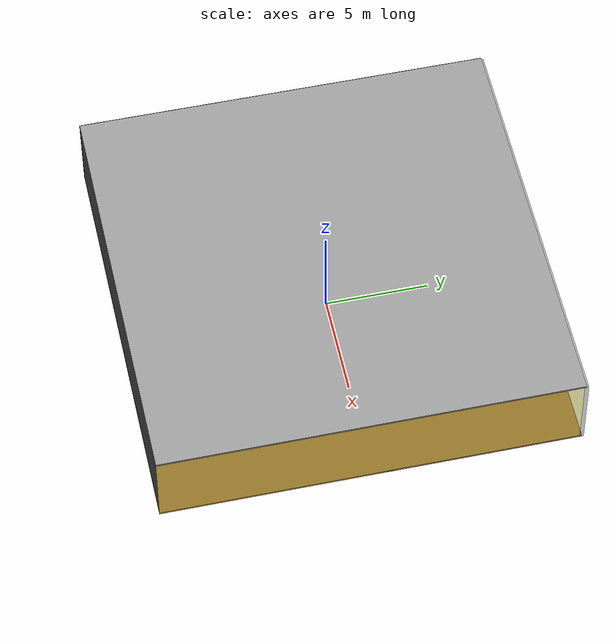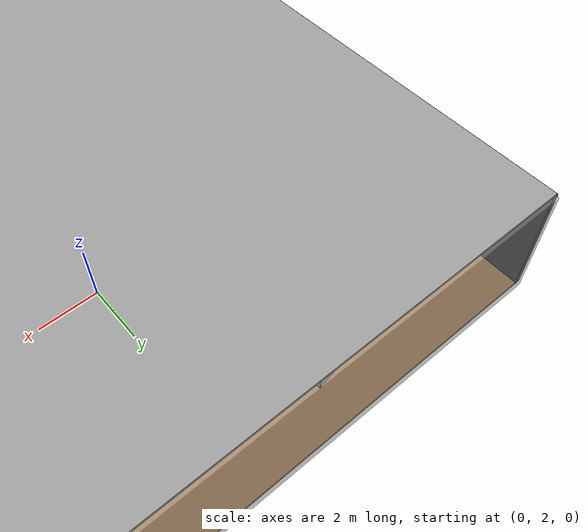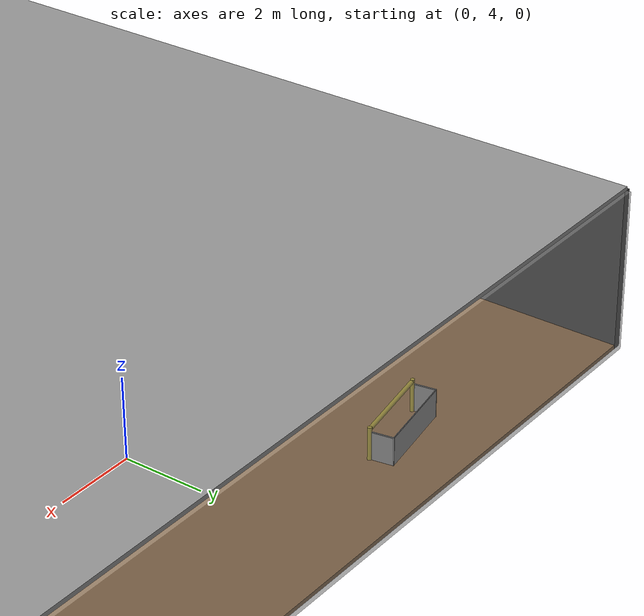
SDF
<sdf version="1.4">
 <world name="default">
  <physics type="ode">
   <max_step_size>0.001</max_step_size>
   <real_time_factor>1</real_time_factor>
   <real_time_update_rate>1000</real_time_update_rate>
   <gravity>0 0 -9.8</gravity>
  </physics>
  <scene><ambient>0.4 0.4 0.4 1</ambient><background>0.7 0.7 0.7 1</background><shadows>1</shadows></scene>
  <model name="Surrounding">
   <static>1</static>
   <link name="Ceiling">
    <collision name="Ceiling_Collision"><geometry><box><size>20 20 0.1</size></box></geometry></collision>
    <visual name="Ceiling_Visual">
     <geometry><box><size>20 20 0.1</size></box></geometry>
     <material>
      <script><uri>file://media/materials/scripts/gazebo.material</uri><name>Gazebo/Grey</name></script>
     </material>
    </visual>
    <pose>0 0 4.05 0 0 0</pose>
   </link>
   <link name="Wall_South">
    <collision name="Wall_South_Collision">
     <geometry><box><size>20 0 4</size></box></geometry>
     <pose>0 0 2 0 -0 0</pose>
    </collision>
    <visual name="Wall_South_Visual">
     <pose>0 0 2 0 -0 0</pose>
     <geometry><box><size>20 0 4</size></box></geometry>
     <material>
      <script><uri>file://media/materials/scripts/gazebo.material</uri><name>Gazebo/Road</name></script>
     </material>
    </visual>
    <velocity_decay><linear>0</linear><angular>0</angular></velocity_decay>
    <pose>0 -10 0 0 -0 0</pose>
   </link>
   <link name="Wall_East">
    <collision name="Wall_21_Collision">
     <geometry><box><size>20 0 4</size></box></geometry>
     <pose>0 0 2 0 -0 0</pose>
    </collision>
    <visual name="Wall_21_Visual">
     <pose>0 0 2 0 -0 0</pose>
     <geometry><box><size>20 0 4</size></box></geometry>
     <material>
      <script>
       <uri>file://media/materials/scripts/gazebo.material</uri>
       <name>Gazebo/YellowTransparent</name>
      </script>
     </material>
    </visual>
    <velocity_decay><linear>0</linear><angular>0</angular></velocity_decay>
    <pose>10 0 0 0 -0 1.5708</pose>
   </link>
   <link name="Wall_North">
    <collision name="Wall_22_Collision">
     <geometry><box><size>20 0.2 4</size></box></geometry>
     <pose>0 0 2 0 -0 0</pose>
    </collision>
    <visual name="Wall_22_Visual">
     <pose>0 0 2 0 -0 0</pose>
     <geometry><box><size>20 0.2 4</size></box></geometry>
     <material>
      <script><uri>file://media/materials/scripts/gazebo.material</uri><name>Gazebo/GreyTransparent</name></script>
     </material>
    </visual>
    <velocity_decay><linear>0</linear><angular>0</angular></velocity_decay>
    <pose>0 10 0 0 -0 0</pose>
   </link>
   <link name="Wall_West">
    <collision name="Wall_23_Collision">
     <geometry><box><size>20 0.2 4</size></box></geometry>
     <pose>0 0 2 0 -0 0</pose>
    </collision>
    <visual name="Wall_23_Visual">
     <pose>0 0 2 0 -0 0</pose>
     <geometry><box><size>20 0.2 4</size></box></geometry>
     <material>
      <script><uri>file://media/materials/scripts/gazebo.material</uri><name>Gazebo/Road</name></script>
     </material>
    </visual>
    <velocity_decay><linear>0</linear><angular>0</angular></velocity_decay>
    <pose>-10 0 0 0 0 -1.5708</pose>
   </link>
   <link name="Ground_link">
    <collision name="collision">
     <pose>0 0 .05 0 -0 0</pose>
     <geometry><box><size>20 20 0.1</size></box></geometry>
    </collision>
    <visual name="visual">
     <pose>0 0 .05 0 -0 0</pose>
     <geometry><box><size>20 20 0.1</size></box></geometry>
     <material>
      <script><uri>file://media/materials/scripts/gazebo.material</uri><name>Gazebo/WoodFloor</name></script>
     </material>
    </visual>
   </link>
   <static>1</static>
  </model>
  <spherical_coordinates>
   <surface_model>EARTH_WGS84</surface_model>
   <latitude_deg>0</latitude_deg>
   <longitude_deg>0</longitude_deg>
   <elevation>0</elevation>
   <heading_deg>0</heading_deg>
  </spherical_coordinates>
  <light name="lightball_0" type="diffuse">
   <diffuse>0.8 0.8 0.8 1</diffuse>
   <specular>0.2 0.2 0.2 1</specular>
   <attenuation>
    <range>100</range>
    <constant>0.7</constant>
    <linear>0.01</linear>
    <quadratic>0.001</quadratic>
   </attenuation>
   <direction>-0.5 0.1 -0.9</direction>
   <pose>-7.63419981656 -9.71641904769 1.88054213165 0 0 0</pose>
  </light>
  <light name="lightball_1" type="diffuse">
   <diffuse>0.8 0.8 0.8 1</diffuse>
   <specular>0.2 0.2 0.2 1</specular>
   <attenuation>
    <range>100</range>
    <constant>0.7</constant>
    <linear>0.01</linear>
    <quadratic>0.001</quadratic>
   </attenuation>
   <direction>-0.5 0.1 -0.9</direction>
   <pose>-3.81856467887 -6.76068907059 2.24088009874 0 0 0</pose>
  </light>
  <light name="lightball_2" type="diffuse">
   <diffuse>0.8 0.8 0.8 1</diffuse>
   <specular>0.2 0.2 0.2 1</specular>
   <attenuation>
    <range>100</range>
    <constant>0.7</constant>
    <linear>0.01</linear>
    <quadratic>0.001</quadratic>
   </attenuation>
   <direction>-0.5 0.1 -0.9</direction>
   <pose>6.78192520225 0.860294239725 2.47905869328 0 0 0</pose>
  </light>
  <light name="lightball_3" type="diffuse">
   <diffuse>0.8 0.8 0.8 1</diffuse>
   <specular>0.2 0.2 0.2 1</specular>
   <attenuation>
    <range>100</range>
    <constant>0.7</constant>
    <linear>0.01</linear>
    <quadratic>0.001</quadratic>
   </attenuation>
   <direction>-0.5 0.1 -0.9</direction>
   <pose>9.24220762868 -9.57903817168 3.14777412907 0 0 0</pose>
  </light>
  <include>
   <uri>model://robocup_3Dsim_goal</uri>
   <pose>-3.90261913357 -1.45974395742 0 0 0 1.86263633343</pose>
  </include>
  <include>
   <uri>model://robocup_3Dsim_goal</uri>
   <pose>-3.91586466859 8.03015811572 0 0 0 1.73984145053</pose>
  </include>
  <include>
   <uri>model://construction_cone</uri>
   <pose>1.78767224503 5.2499553725 0 0 0 3.01143697878</pose>
  </include>
 </world>
</sdf>

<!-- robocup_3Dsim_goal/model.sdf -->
<sdf version="1.5">
  <model name="robocup_3d_goal">
    <static>true</static>
    <link name="left_post">
      <pose>0 1.05 0.45 0 0 0</pose>
      <collision name="collision">
        <geometry>
          <cylinder>
            <radius>0.05</radius>
            <length>0.9</length>
          </cylinder>
        </geometry>
      </collision>
      <visual name="visual">
        <geometry>
          <cylinder>
            <radius>0.05</radius>
            <length>0.9</length>
          </cylinder>
        </geometry>
        <material>
          <script>
            <uri>file://media/materials/scripts/gazebo.material</uri>
            <name>Gazebo/ZincYellow</name>
          </script>
        </material>
      </visual>
    </link>
    <link name="left_support_horiz_lower">
      <pose>0.30 1.05 0.01 0 0 0</pose>
      <collision name="collision">
        <geometry>
          <box>
            <size>0.50 0.02 0.02</size>
          </box>
        </geometry>
      </collision>
      <visual name="visual">
        <geometry>
          <box>
            <size>0.50 0.02 0.02</size>
          </box>
        </geometry>
        <material>
          <script>
            <uri>file://media/materials/scripts/gazebo.material</uri>
            <name>Gazebo/White</name>
          </script>
        </material>
      </visual>
    </link>
    <link name="left_support_horiz_upper">
      <pose>0.30 1.05 0.79 0 0 0</pose>
      <collision name="collision">
        <geometry>
          <box>
            <size>0.50 0.02 0.02</size>
          </box>
        </geometry>
      </collision>
      <visual name="visual">
        <geometry>
          <box>
            <size>0.50 0.02 0.02</size>
          </box>
        </geometry>
        <material>
          <script>
            <uri>file://media/materials/scripts/gazebo.material</uri>
            <name>Gazebo/White</name>
          </script>
        </material>
      </visual>
    </link>
    <link name="left_support_vertical">
      <pose>0.56 1.05 0.4 0 1.5708 0</pose>
      <collision name="collision">
        <geometry>
          <box>
            <size>0.80 0.02 0.02</size>
          </box>
        </geometry>
      </collision>
      <visual name="visual">
        <geometry>
          <box>
            <size>0.80 0.02 0.02</size>
          </box>
        </geometry>
        <material>
          <script>
            <uri>file://media/materials/scripts/gazebo.material</uri>
            <name>Gazebo/White</name>
          </script>
        </material>
      </visual>
    </link>
    <link name="right_support_horiz_lower">
      <pose>0.30 -1.05 0.01 0 0 0</pose>
      <collision name="collision">
        <geometry>
          <box>
            <size>0.50 0.02 0.02</size>
          </box>
        </geometry>
      </collision>
      <visual name="visual">
        <geometry>
          <box>
            <size>0.50 0.02 0.02</size>
          </box>
        </geometry>
        <material>
          <script>
            <uri>file://media/materials/scripts/gazebo.material</uri>
            <name>Gazebo/White</name>
          </script>
        </material>
      </visual>
    </link>
    <link name="right_support_horiz_upper">
      <pose>0.30 -1.05 0.79 0 0 0</pose>
      <collision name="collision">
        <geometry>
          <box>
            <size>0.50 0.02 0.02</size>
          </box>
        </geometry>
      </collision>
      <visual name="visual">
        <geometry>
          <box>
            <size>0.50 0.02 0.02</size>
          </box>
        </geometry>
        <material>
          <script>
            <uri>file://media/materials/scripts/gazebo.material</uri>
            <name>Gazebo/White</name>
          </script>
        </material>
      </visual>
    </link>
    <link name="right_support_vertical">
      <pose>0.56 -1.05 0.4 0 1.5708 0</pose>
      <collision name="collision">
        <geometry>
          <box>
            <size>0.80 0.02 0.02</size>
          </box>
        </geometry>
      </collision>
      <visual name="visual">
        <geometry>
          <box>
            <size>0.80 0.02 0.02</size>
          </box>
        </geometry>
        <material>
          <script>
            <uri>file://media/materials/scripts/gazebo.material</uri>
            <name>Gazebo/White</name>
          </script>
        </material>
      </visual>
    </link>
    <link name="center_support_horiz_lower">
      <pose>0.56 0 0.01 0 1.5708 0</pose>
      <collision name="collision">
        <geometry>
          <box>
            <size>0.02 2.08 0.02</size>
          </box>
        </geometry>
      </collision>
      <visual name="visual">
        <geometry>
          <box>
            <size>0.02 2.08 0.02</size>
          </box>
        </geometry>
        <material>
          <script>
            <uri>file://media/materials/scripts/gazebo.material</uri>
            <name>Gazebo/White</name>
          </script>
        </material>
      </visual>
    </link>
    <link name="center_support_horiz_upper">
      <pose>0.56 0 0.79 0 1.5708 0</pose>
      <collision name="collision">
        <geometry>
          <box>
            <size>0.02 2.08 0.02</size>
          </box>
        </geometry>
      </collision>
      <visual name="visual">
        <geometry>
          <box>
            <size>0.02 2.08 0.02</size>
          </box>
        </geometry>
        <material>
          <script>
            <uri>file://media/materials/scripts/gazebo.material</uri>
            <name>Gazebo/White</name>
          </script>
        </material>
      </visual>
    </link>
    <link name="right_post">
      <pose>0 -1.05 0.45 0 0 0</pose>
      <collision name="collision">
        <geometry>
          <cylinder>
            <radius>0.05</radius>
            <length>0.9</length>
          </cylinder>
        </geometry>
      </collision>
      <visual name="visual">
        <geometry>
          <cylinder>
            <radius>0.05</radius>
            <length>0.9</length>
          </cylinder>
        </geometry>
        <material>
          <script>
            <uri>file://media/materials/scripts/gazebo.material</uri>
            <name>Gazebo/ZincYellow</name>
          </script>
        </material>
      </visual>
    </link>
    <link name="crossbar">
      <pose>0 0 0.85 1.57 1.57 0</pose>
      <collision name="collision">
        <geometry>
          <cylinder>
            <radius>0.05</radius>
            <length>2.0</length>
          </cylinder>
        </geometry>
      </collision>
      <visual name="visual">
        <geometry>
          <cylinder>
            <radius>0.05</radius>
            <length>2.0</length>
          </cylinder>
        </geometry>
        <material>
          <script>
            <uri>file://media/materials/scripts/gazebo.material</uri>
            <name>Gazebo/ZincYellow</name>
          </script>
        </material>
      </visual>
    </link>
    <link name="center_net">
      <pose>0.56 0 0.40 0 0 0</pose>
      <collision name="collision">
        <geometry>
          <box>
            <size>0.01 2.1 0.80</size>
          </box>
        </geometry>
      </collision>
      <visual name="visual">
        <geometry>
          <box>
            <size>0.01 2.1 0.80</size>
          </box>
        </geometry>
        <material>
          <script>
            <uri>model://../model_source/models/robocup09_spl_field/materials/scripts/</uri>
            <uri>model://../model_source/models/robocup09_spl_field/materials/textures/</uri>
            <name>RoboCup/Net</name>
          </script>
        </material>
      </visual>
    </link>
    <link name="left_net">
      <pose>0.30 1.05 0.40 0 0 0</pose>
      <collision name="collision">
        <geometry>
          <box>
            <size>0.50 0.01 0.76</size>
          </box>
        </geometry>
      </collision>
      <visual name="visual">
        <geometry>
          <box>
            <size>0.50 0.01 0.76</size>
          </box>
        </geometry>
        <material>
          <script>
            <uri>model://../model_source/models/robocup09_spl_field/materials/scripts/</uri>
            <uri>model://../model_source/models/robocup09_spl_field/materials/textures/</uri>
            <name>RoboCup/Net</name>
          </script>
        </material>
      </visual>
    </link>
    <link name="right_net">
      <pose>0.30 -1.05 0.40 0 0 0</pose>
      <collision name="collision">
        <geometry>
          <box>
            <size>0.50 0.01 0.76</size>
          </box>
        </geometry>
      </collision>
      <visual name="visual">
        <geometry>
          <box>
            <size>0.50 0.01 0.76</size>
          </box>
        </geometry>
        <material>
          <script>
            <uri>model://../model_source/models/robocup09_spl_field/materials/scripts/</uri>
            <uri>model://../model_source/models/robocup09_spl_field/materials/textures/</uri>
            <name>RoboCup/Net</name>
          </script>
        </material>
      </visual>
    </link>
  </model>
</sdf>

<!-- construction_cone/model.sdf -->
<sdf version="1.5">
  <model name="Construction Cone">
    <link name="link">
      <collision name="collision">
        <geometry>
          <mesh>
            <scale>10 10 10</scale>
            <uri>file://isr-testbed/construction_cone/meshes/construction_cone.dae</uri>
          </mesh>
        </geometry>
      </collision>
      <visual name="visual">
        <geometry>
          <mesh>
            <scale>10 10 10</scale>
            <uri>file://isr-testbed/construction_cone/meshes/construction_cone.dae</uri>
          </mesh>
        </geometry>
      </visual>
    </link>
  </model>
</sdf>
